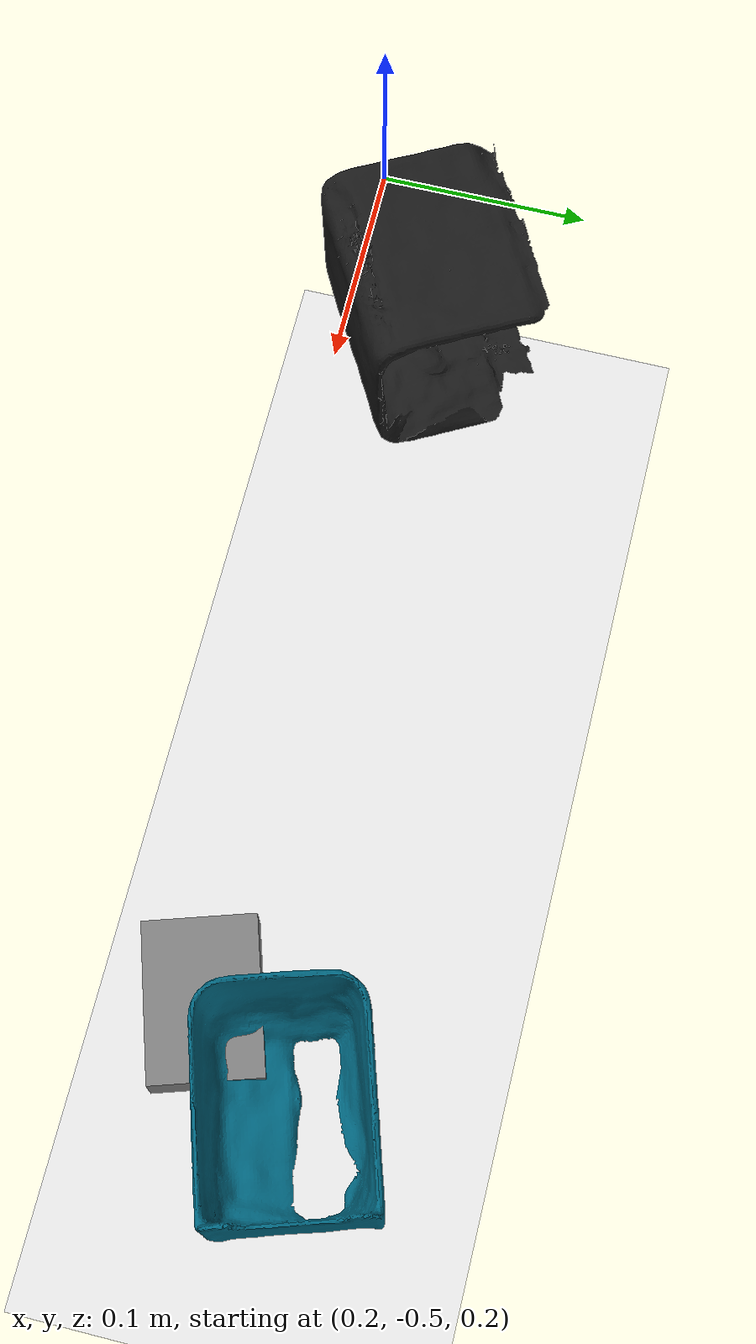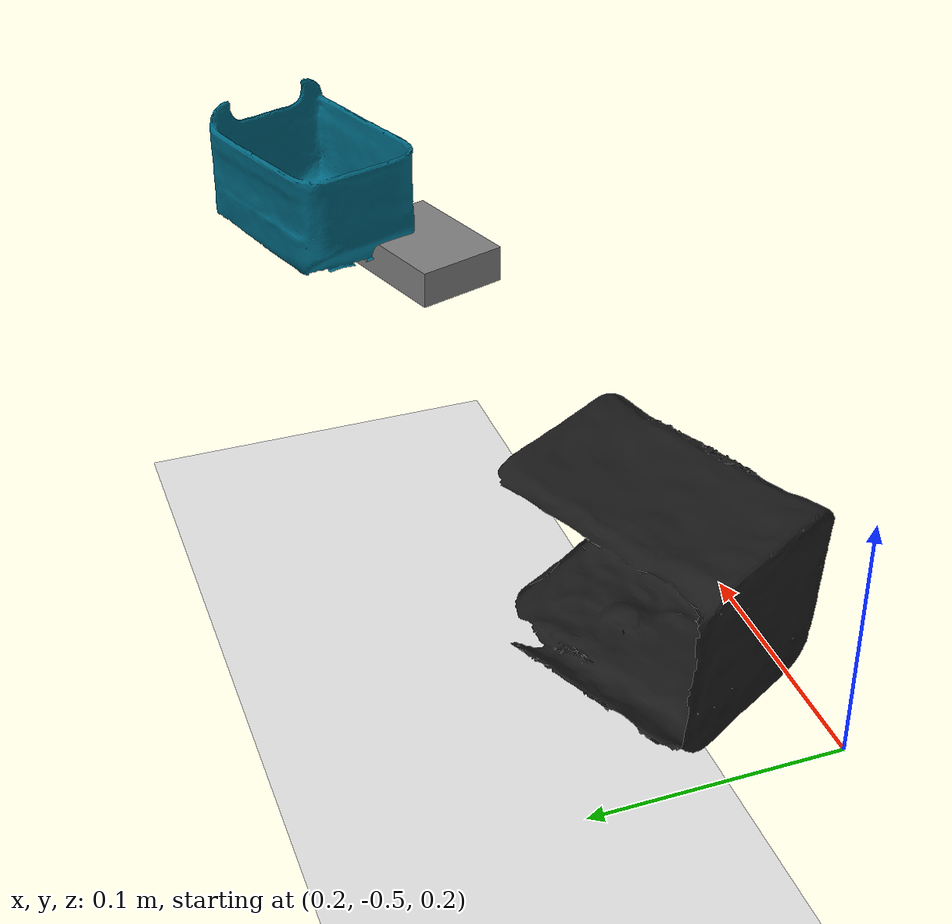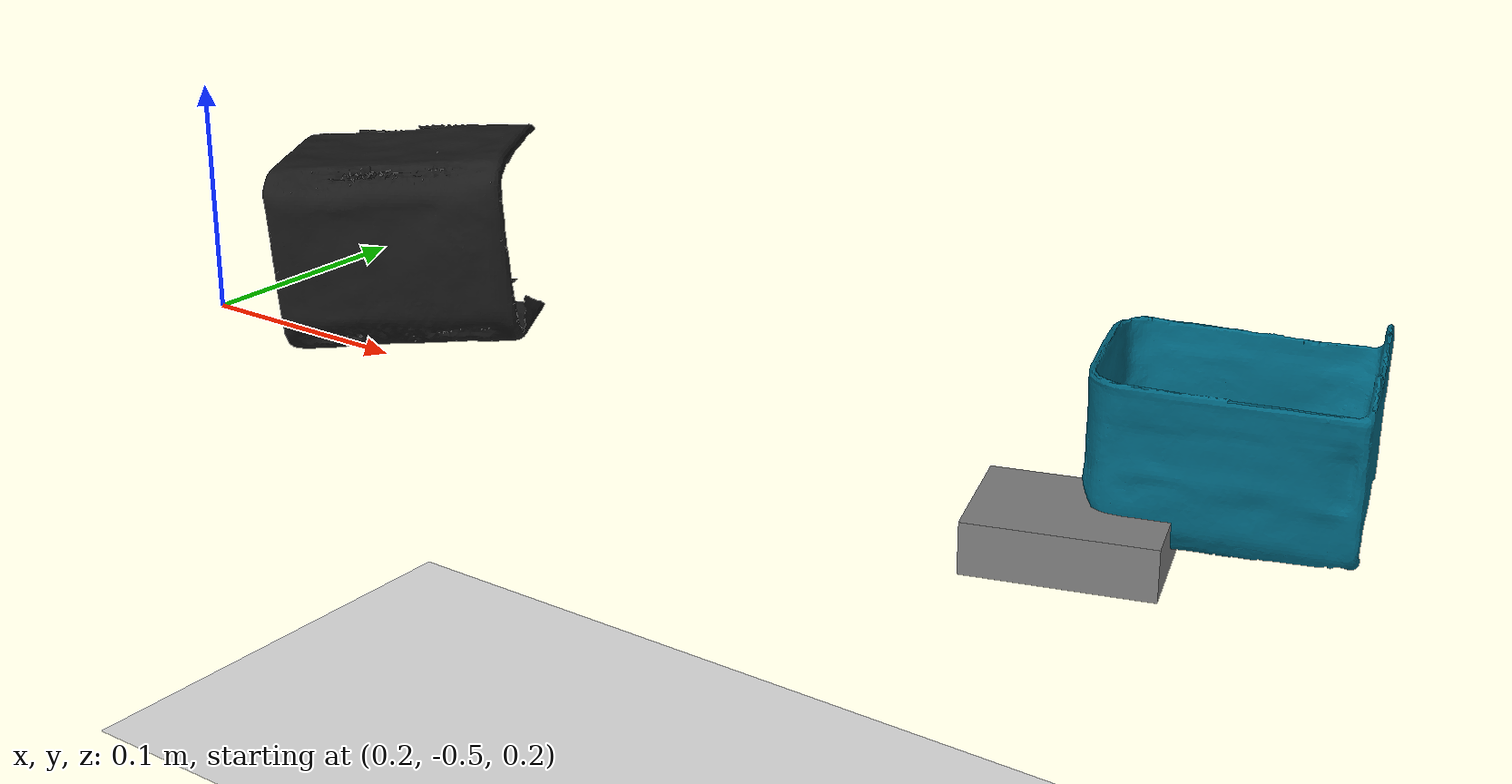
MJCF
<mujoco model="graspable_objects">
  <compiler
      meshdir=""
      angle="radian"
      coordinate="local"
      strippath="false"
      discardvisual="false"
      inertiafromgeom="true" />

  <option gravity="0 0 -9.81" integrator="RK4" timestep="0.001"
          cone="pyramidal" impratio="5" tolerance="1e-8">
    <flag warmstart="enable"/>
  </option>

  <asset>
    <mesh name="draw1" file="meshes/Draw/draw1.stl"/>
    <mesh name="draw2" file="meshes/Draw/draw2.stl"/>
    <material name="rubber" rgba="0.0 0.4 0.5 1"/>
    <material name="mat_floor" rgba="0.9 0.9 0.9 1"/>
  </asset>

  <!-- Defaults: split visual vs collision -->
  <default>
    <!-- General contact-friendly settings -->
    <geom friction="1.2 0.01 0.002"
          solref="0.005 1"
          solimp="0.95 0.99 0.001"
          condim="6"
          contype="1"
          conaffinity="1"/>

    <!-- Collision geoms: carry mass, collide, slightly higher friction & small margin -->
    <default class="col">
      <geom friction="1.5 0.015 0.003"
            margin="0.002"
            solref="0.003 1"
            solimp="0.95 0.99 0.001"
            condim="6"
            contype="1"
            conaffinity="1"/>
    </default>

    <!-- Visual geoms: render-only (no contact, no mass) -->
    <default class="vis">
      <geom contype="0" conaffinity="0" group="1" density="0"/>
    </default>
  </default>

  <worldbody>

    <!-- Ground -->
    <geom name="floor" type="plane" size="2 2 0.05" material="mat_floor"/>

    <!-- draw1: Graspable object -->
    <body name="draw1" pos="0.613 -0.478 0.196" quat="0.987964 0.003288 0.003636 0.154607">
      <joint name="draw1_free" type="free" damping="0.5" armature="0.001"/>

      <!-- Visual mesh (massless & non-colliding) -->
      <geom name="draw1_vis" class="vis" type="mesh" mesh="draw1" material="rubber"/>

      <!-- Collision proxy (simple convex shape for reliable contacts)
           size values are HALF-extents (full dims ~ 7×5×2 cm).
           Density chosen to yield a ~100 g object; adjust as needed. -->
      <geom name="draw1_col_box" class="col" type="box" size="0.035 0.025 0.010" density="1500"/>

      <!-- Optional extra collider for a protruding handle (uncomment/tune if useful) -->

      <!-- Grasp target frame at the COM -->
      <site name="draw1_grasp" pos="0 0 0" size="0.005" rgba="0.8 0.2 0.2 1"/>
    </body>

    <!-- draw2: Static visual/background object (fixed to world, no collisions) -->
    <body name="draw2" pos="0.25 -0.521 0.196" quat="0.365226 0.351452 0.607535 0.611549">
      <!-- No joint => fixed; visual only => no mass, no contact -->
      <geom name="draw2_vis" class="vis" type="mesh" mesh="draw2" rgba="0.1 0.1 0.1 1"/>
    </body>

  </worldbody>
</mujoco>
